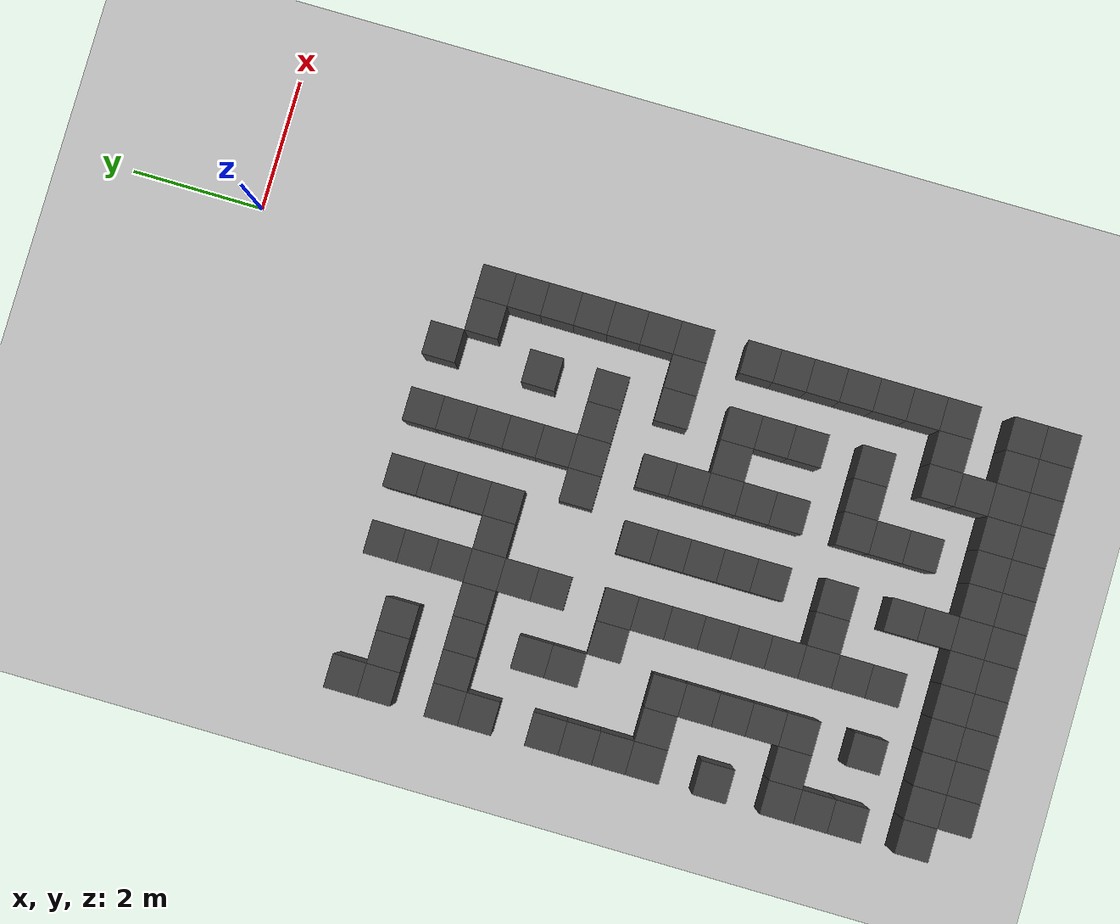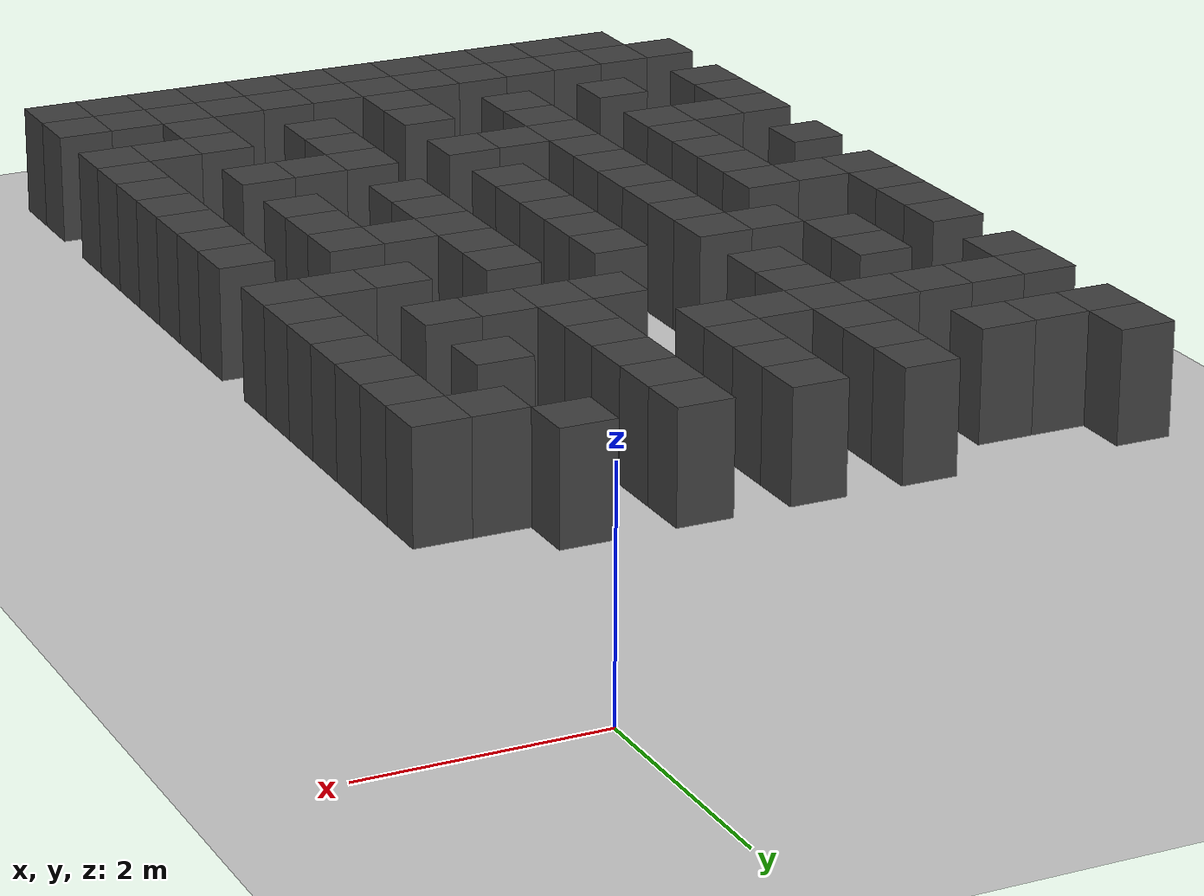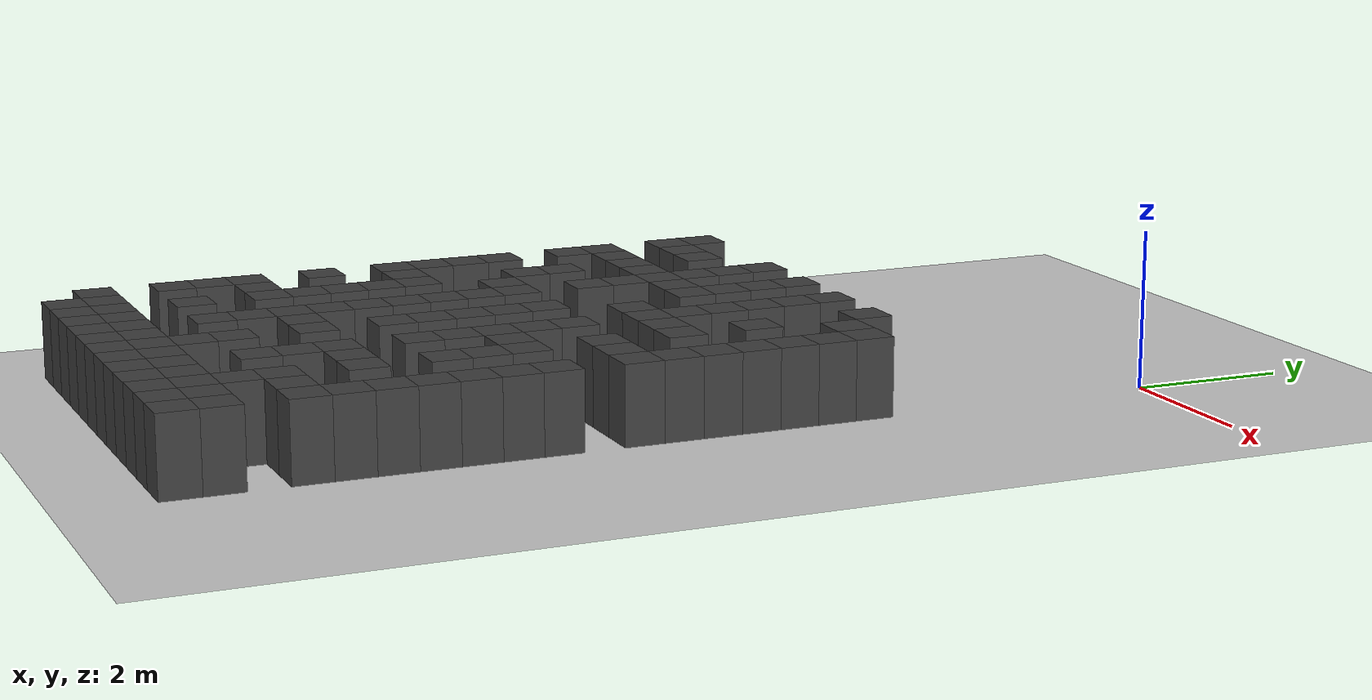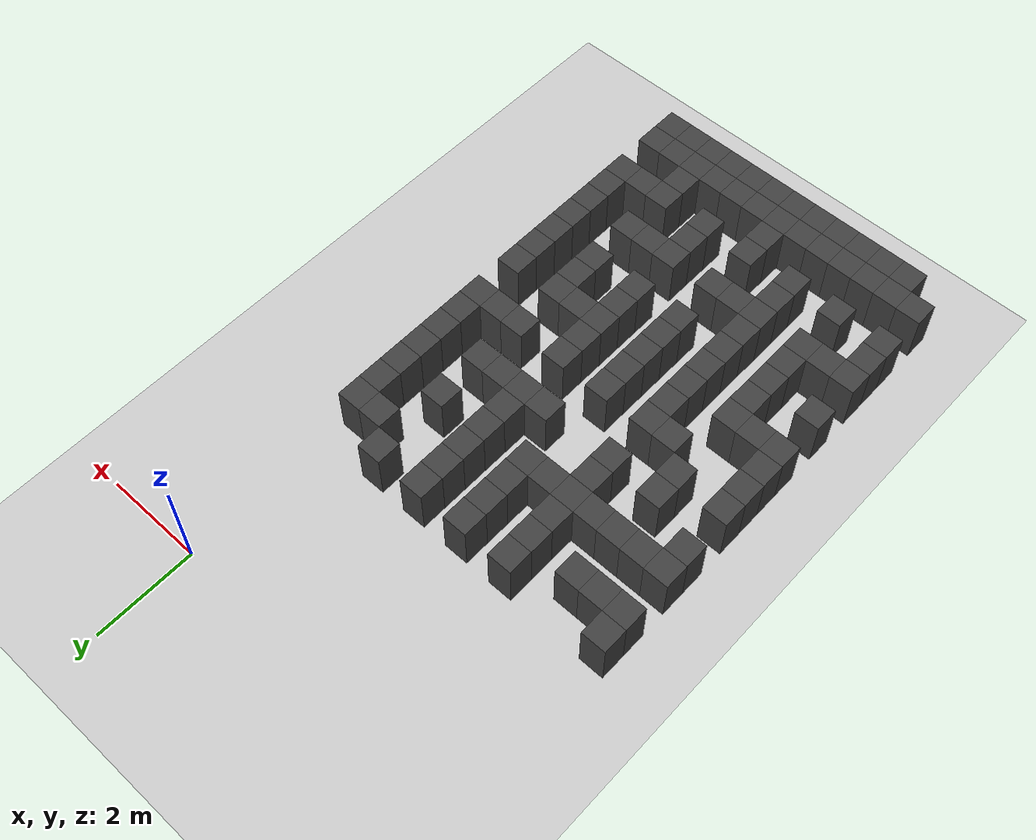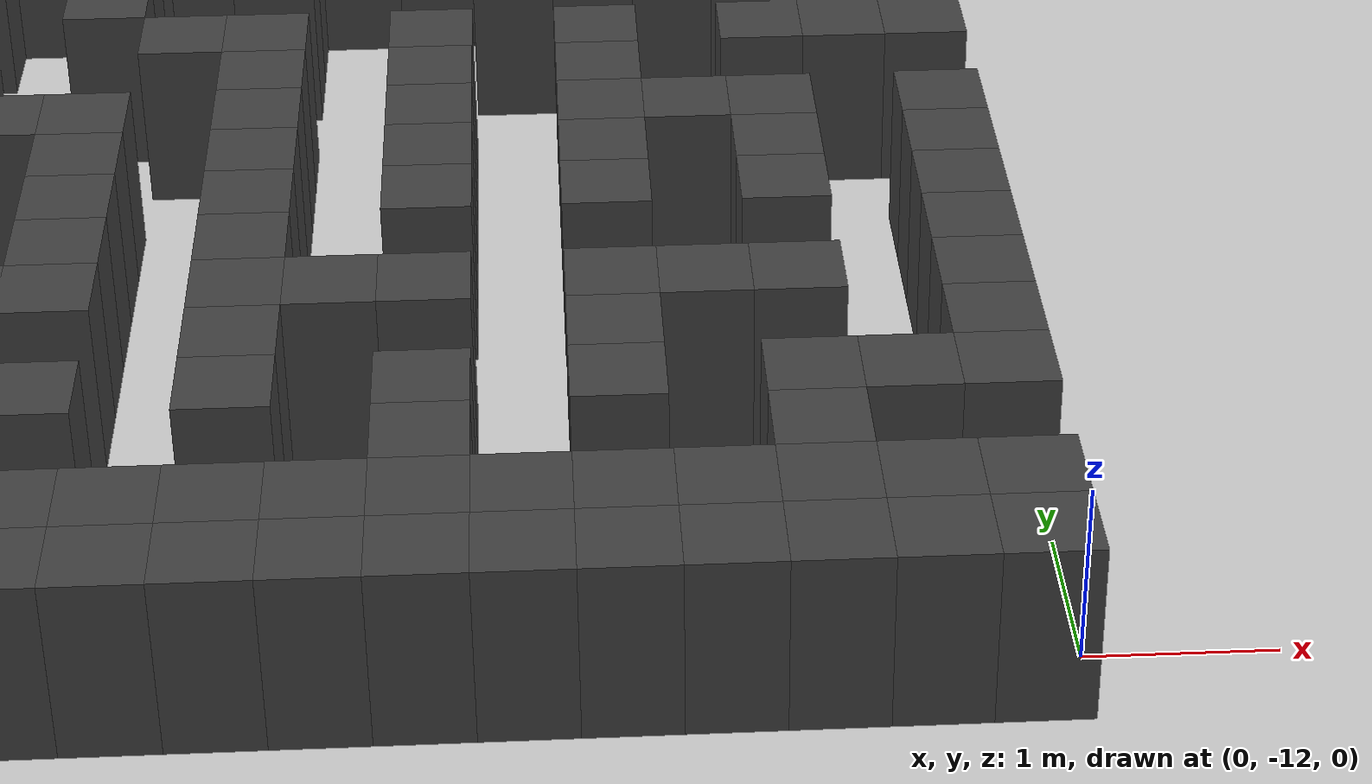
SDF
<sdf version="1.7">
 <world name="map_17503">
  <model name="ground_plane">
   <static>true</static>
   <link name="link">
    <collision name="collision">
     <geometry><plane><normal>0 0 1</normal><size>200 200</size></plane></geometry>
    </collision>
    <visual name="visual">
     <geometry><plane><normal>0 0 1</normal><size>200 200</size></plane></geometry>
     <material><ambient>0.8 0.8 0.8 1</ambient><diffuse>0.8 0.8 0.8 1</diffuse></material>
    </visual>
   </link>
  </model>
  <model name="maze_environment">
   <static>true</static>
   <link name="wall_777">
    <pose>-6.250 -3.250 0.500 0 0 0</pose>
    <collision name="col"><geometry><box><size>0.5 0.5 1.0</size></box></geometry></collision>
    <visual name="vis">
     <geometry><box><size>0.5 0.5 1.0</size></box></geometry>
     <material><ambient>0.15 0.15 0.15 1</ambient><diffuse>0.25 0.25 0.25 1</diffuse></material>
    </visual>
   </link>
   <link name="wall_778">
    <pose>-4.250 -3.250 0.500 0 0 0</pose>
    <collision name="col"><geometry><box><size>0.5 0.5 1.0</size></box></geometry></collision>
    <visual name="vis">
     <geometry><box><size>0.5 0.5 1.0</size></box></geometry>
     <material><ambient>0.15 0.15 0.15 1</ambient><diffuse>0.25 0.25 0.25 1</diffuse></material>
    </visual>
   </link>
   <link name="wall_779">
    <pose>-3.250 -3.250 0.500 0 0 0</pose>
    <collision name="col"><geometry><box><size>0.5 0.5 1.0</size></box></geometry></collision>
    <visual name="vis">
     <geometry><box><size>0.5 0.5 1.0</size></box></geometry>
     <material><ambient>0.15 0.15 0.15 1</ambient><diffuse>0.25 0.25 0.25 1</diffuse></material>
    </visual>
   </link>
   <link name="wall_780">
    <pose>-2.250 -3.250 0.500 0 0 0</pose>
    <collision name="col"><geometry><box><size>0.5 0.5 1.0</size></box></geometry></collision>
    <visual name="vis">
     <geometry><box><size>0.5 0.5 1.0</size></box></geometry>
     <material><ambient>0.15 0.15 0.15 1</ambient><diffuse>0.25 0.25 0.25 1</diffuse></material>
    </visual>
   </link>
   <link name="wall_781">
    <pose>-1.250 -3.250 0.500 0 0 0</pose>
    <collision name="col"><geometry><box><size>0.5 0.5 1.0</size></box></geometry></collision>
    <visual name="vis">
     <geometry><box><size>0.5 0.5 1.0</size></box></geometry>
     <material><ambient>0.15 0.15 0.15 1</ambient><diffuse>0.25 0.25 0.25 1</diffuse></material>
    </visual>
   </link>
   <link name="wall_798">
    <pose>-6.250 -3.750 0.500 0 0 0</pose>
    <collision name="col"><geometry><box><size>0.5 0.5 1.0</size></box></geometry></collision>
    <visual name="vis">
     <geometry><box><size>0.5 0.5 1.0</size></box></geometry>
     <material><ambient>0.15 0.15 0.15 1</ambient><diffuse>0.25 0.25 0.25 1</diffuse></material>
    </visual>
   </link>
   <link name="wall_799">
    <pose>-5.750 -3.750 0.500 0 0 0</pose>
    <collision name="col"><geometry><box><size>0.5 0.5 1.0</size></box></geometry></collision>
    <visual name="vis">
     <geometry><box><size>0.5 0.5 1.0</size></box></geometry>
     <material><ambient>0.15 0.15 0.15 1</ambient><diffuse>0.25 0.25 0.25 1</diffuse></material>
    </visual>
   </link>
   <link name="wall_800">
    <pose>-5.250 -3.750 0.500 0 0 0</pose>
    <collision name="col"><geometry><box><size>0.5 0.5 1.0</size></box></geometry></collision>
    <visual name="vis">
     <geometry><box><size>0.5 0.5 1.0</size></box></geometry>
     <material><ambient>0.15 0.15 0.15 1</ambient><diffuse>0.25 0.25 0.25 1</diffuse></material>
    </visual>
   </link>
   <link name="wall_801">
    <pose>-4.250 -3.750 0.500 0 0 0</pose>
    <collision name="col"><geometry><box><size>0.5 0.5 1.0</size></box></geometry></collision>
    <visual name="vis">
     <geometry><box><size>0.5 0.5 1.0</size></box></geometry>
     <material><ambient>0.15 0.15 0.15 1</ambient><diffuse>0.25 0.25 0.25 1</diffuse></material>
    </visual>
   </link>
   <link name="wall_802">
    <pose>-3.250 -3.750 0.500 0 0 0</pose>
    <collision name="col"><geometry><box><size>0.5 0.5 1.0</size></box></geometry></collision>
    <visual name="vis">
     <geometry><box><size>0.5 0.5 1.0</size></box></geometry>
     <material><ambient>0.15 0.15 0.15 1</ambient><diffuse>0.25 0.25 0.25 1</diffuse></material>
    </visual>
   </link>
   <link name="wall_803">
    <pose>-2.250 -3.750 0.500 0 0 0</pose>
    <collision name="col"><geometry><box><size>0.5 0.5 1.0</size></box></geometry></collision>
    <visual name="vis">
     <geometry><box><size>0.5 0.5 1.0</size></box></geometry>
     <material><ambient>0.15 0.15 0.15 1</ambient><diffuse>0.25 0.25 0.25 1</diffuse></material>
    </visual>
   </link>
   <link name="wall_804">
    <pose>-0.750 -3.750 0.500 0 0 0</pose>
    <collision name="col"><geometry><box><size>0.5 0.5 1.0</size></box></geometry></collision>
    <visual name="vis">
     <geometry><box><size>0.5 0.5 1.0</size></box></geometry>
     <material><ambient>0.15 0.15 0.15 1</ambient><diffuse>0.25 0.25 0.25 1</diffuse></material>
    </visual>
   </link>
   <link name="wall_805">
    <pose>-0.250 -3.750 0.500 0 0 0</pose>
    <collision name="col"><geometry><box><size>0.5 0.5 1.0</size></box></geometry></collision>
    <visual name="vis">
     <geometry><box><size>0.5 0.5 1.0</size></box></geometry>
     <material><ambient>0.15 0.15 0.15 1</ambient><diffuse>0.25 0.25 0.25 1</diffuse></material>
    </visual>
   </link>
   <link name="wall_829">
    <pose>-4.250 -4.250 0.500 0 0 0</pose>
    <collision name="col"><geometry><box><size>0.5 0.5 1.0</size></box></geometry></collision>
    <visual name="vis">
     <geometry><box><size>0.5 0.5 1.0</size></box></geometry>
     <material><ambient>0.15 0.15 0.15 1</ambient><diffuse>0.25 0.25 0.25 1</diffuse></material>
    </visual>
   </link>
   <link name="wall_830">
    <pose>-3.250 -4.250 0.500 0 0 0</pose>
    <collision name="col"><geometry><box><size>0.5 0.5 1.0</size></box></geometry></collision>
    <visual name="vis">
     <geometry><box><size>0.5 0.5 1.0</size></box></geometry>
     <material><ambient>0.15 0.15 0.15 1</ambient><diffuse>0.25 0.25 0.25 1</diffuse></material>
    </visual>
   </link>
   <link name="wall_831">
    <pose>-2.250 -4.250 0.500 0 0 0</pose>
    <collision name="col"><geometry><box><size>0.5 0.5 1.0</size></box></geometry></collision>
    <visual name="vis">
     <geometry><box><size>0.5 0.5 1.0</size></box></geometry>
     <material><ambient>0.15 0.15 0.15 1</ambient><diffuse>0.25 0.25 0.25 1</diffuse></material>
    </visual>
   </link>
   <link name="wall_832">
    <pose>-0.250 -4.250 0.500 0 0 0</pose>
    <collision name="col"><geometry><box><size>0.5 0.5 1.0</size></box></geometry></collision>
    <visual name="vis">
     <geometry><box><size>0.5 0.5 1.0</size></box></geometry>
     <material><ambient>0.15 0.15 0.15 1</ambient><diffuse>0.25 0.25 0.25 1</diffuse></material>
    </visual>
   </link>
   <link name="wall_850">
    <pose>-6.250 -4.750 0.500 0 0 0</pose>
    <collision name="col"><geometry><box><size>0.5 0.5 1.0</size></box></geometry></collision>
    <visual name="vis">
     <geometry><box><size>0.5 0.5 1.0</size></box></geometry>
     <material><ambient>0.15 0.15 0.15 1</ambient><diffuse>0.25 0.25 0.25 1</diffuse></material>
    </visual>
   </link>
   <link name="wall_851">
    <pose>-5.750 -4.750 0.500 0 0 0</pose>
    <collision name="col"><geometry><box><size>0.5 0.5 1.0</size></box></geometry></collision>
    <visual name="vis">
     <geometry><box><size>0.5 0.5 1.0</size></box></geometry>
     <material><ambient>0.15 0.15 0.15 1</ambient><diffuse>0.25 0.25 0.25 1</diffuse></material>
    </visual>
   </link>
   <link name="wall_852">
    <pose>-5.250 -4.750 0.500 0 0 0</pose>
    <collision name="col"><geometry><box><size>0.5 0.5 1.0</size></box></geometry></collision>
    <visual name="vis">
     <geometry><box><size>0.5 0.5 1.0</size></box></geometry>
     <material><ambient>0.15 0.15 0.15 1</ambient><diffuse>0.25 0.25 0.25 1</diffuse></material>
    </visual>
   </link>
   <link name="wall_853">
    <pose>-4.750 -4.750 0.500 0 0 0</pose>
    <collision name="col"><geometry><box><size>0.5 0.5 1.0</size></box></geometry></collision>
    <visual name="vis">
     <geometry><box><size>0.5 0.5 1.0</size></box></geometry>
     <material><ambient>0.15 0.15 0.15 1</ambient><diffuse>0.25 0.25 0.25 1</diffuse></material>
    </visual>
   </link>
   <link name="wall_854">
    <pose>-4.250 -4.750 0.500 0 0 0</pose>
    <collision name="col"><geometry><box><size>0.5 0.5 1.0</size></box></geometry></collision>
    <visual name="vis">
     <geometry><box><size>0.5 0.5 1.0</size></box></geometry>
     <material><ambient>0.15 0.15 0.15 1</ambient><diffuse>0.25 0.25 0.25 1</diffuse></material>
    </visual>
   </link>
   <link name="wall_855">
    <pose>-3.750 -4.750 0.500 0 0 0</pose>
    <collision name="col"><geometry><box><size>0.5 0.5 1.0</size></box></geometry></collision>
    <visual name="vis">
     <geometry><box><size>0.5 0.5 1.0</size></box></geometry>
     <material><ambient>0.15 0.15 0.15 1</ambient><diffuse>0.25 0.25 0.25 1</diffuse></material>
    </visual>
   </link>
   <link name="wall_856">
    <pose>-3.250 -4.750 0.500 0 0 0</pose>
    <collision name="col"><geometry><box><size>0.5 0.5 1.0</size></box></geometry></collision>
    <visual name="vis">
     <geometry><box><size>0.5 0.5 1.0</size></box></geometry>
     <material><ambient>0.15 0.15 0.15 1</ambient><diffuse>0.25 0.25 0.25 1</diffuse></material>
    </visual>
   </link>
   <link name="wall_857">
    <pose>-2.250 -4.750 0.500 0 0 0</pose>
    <collision name="col"><geometry><box><size>0.5 0.5 1.0</size></box></geometry></collision>
    <visual name="vis">
     <geometry><box><size>0.5 0.5 1.0</size></box></geometry>
     <material><ambient>0.15 0.15 0.15 1</ambient><diffuse>0.25 0.25 0.25 1</diffuse></material>
    </visual>
   </link>
   <link name="wall_858">
    <pose>-1.250 -4.750 0.500 0 0 0</pose>
    <collision name="col"><geometry><box><size>0.5 0.5 1.0</size></box></geometry></collision>
    <visual name="vis">
     <geometry><box><size>0.5 0.5 1.0</size></box></geometry>
     <material><ambient>0.15 0.15 0.15 1</ambient><diffuse>0.25 0.25 0.25 1</diffuse></material>
    </visual>
   </link>
   <link name="wall_859">
    <pose>-0.250 -4.750 0.500 0 0 0</pose>
    <collision name="col"><geometry><box><size>0.5 0.5 1.0</size></box></geometry></collision>
    <visual name="vis">
     <geometry><box><size>0.5 0.5 1.0</size></box></geometry>
     <material><ambient>0.15 0.15 0.15 1</ambient><diffuse>0.25 0.25 0.25 1</diffuse></material>
    </visual>
   </link>
   <link name="wall_881">
    <pose>-6.250 -5.250 0.500 0 0 0</pose>
    <collision name="col"><geometry><box><size>0.5 0.5 1.0</size></box></geometry></collision>
    <visual name="vis">
     <geometry><box><size>0.5 0.5 1.0</size></box></geometry>
     <material><ambient>0.15 0.15 0.15 1</ambient><diffuse>0.25 0.25 0.25 1</diffuse></material>
    </visual>
   </link>
   <link name="wall_882">
    <pose>-4.250 -5.250 0.500 0 0 0</pose>
    <collision name="col"><geometry><box><size>0.5 0.5 1.0</size></box></geometry></collision>
    <visual name="vis">
     <geometry><box><size>0.5 0.5 1.0</size></box></geometry>
     <material><ambient>0.15 0.15 0.15 1</ambient><diffuse>0.25 0.25 0.25 1</diffuse></material>
    </visual>
   </link>
   <link name="wall_883">
    <pose>-2.250 -5.250 0.500 0 0 0</pose>
    <collision name="col"><geometry><box><size>0.5 0.5 1.0</size></box></geometry></collision>
    <visual name="vis">
     <geometry><box><size>0.5 0.5 1.0</size></box></geometry>
     <material><ambient>0.15 0.15 0.15 1</ambient><diffuse>0.25 0.25 0.25 1</diffuse></material>
    </visual>
   </link>
   <link name="wall_884">
    <pose>-0.250 -5.250 0.500 0 0 0</pose>
    <collision name="col"><geometry><box><size>0.5 0.5 1.0</size></box></geometry></collision>
    <visual name="vis">
     <geometry><box><size>0.5 0.5 1.0</size></box></geometry>
     <material><ambient>0.15 0.15 0.15 1</ambient><diffuse>0.25 0.25 0.25 1</diffuse></material>
    </visual>
   </link>
   <link name="wall_900">
    <pose>-5.250 -5.750 0.500 0 0 0</pose>
    <collision name="col"><geometry><box><size>0.5 0.5 1.0</size></box></geometry></collision>
    <visual name="vis">
     <geometry><box><size>0.5 0.5 1.0</size></box></geometry>
     <material><ambient>0.15 0.15 0.15 1</ambient><diffuse>0.25 0.25 0.25 1</diffuse></material>
    </visual>
   </link>
   <link name="wall_901">
    <pose>-4.250 -5.750 0.500 0 0 0</pose>
    <collision name="col"><geometry><box><size>0.5 0.5 1.0</size></box></geometry></collision>
    <visual name="vis">
     <geometry><box><size>0.5 0.5 1.0</size></box></geometry>
     <material><ambient>0.15 0.15 0.15 1</ambient><diffuse>0.25 0.25 0.25 1</diffuse></material>
    </visual>
   </link>
   <link name="wall_902">
    <pose>-2.750 -5.750 0.500 0 0 0</pose>
    <collision name="col"><geometry><box><size>0.5 0.5 1.0</size></box></geometry></collision>
    <visual name="vis">
     <geometry><box><size>0.5 0.5 1.0</size></box></geometry>
     <material><ambient>0.15 0.15 0.15 1</ambient><diffuse>0.25 0.25 0.25 1</diffuse></material>
    </visual>
   </link>
   <link name="wall_903">
    <pose>-2.250 -5.750 0.500 0 0 0</pose>
    <collision name="col"><geometry><box><size>0.5 0.5 1.0</size></box></geometry></collision>
    <visual name="vis">
     <geometry><box><size>0.5 0.5 1.0</size></box></geometry>
     <material><ambient>0.15 0.15 0.15 1</ambient><diffuse>0.25 0.25 0.25 1</diffuse></material>
    </visual>
   </link>
   <link name="wall_904">
    <pose>-1.750 -5.750 0.500 0 0 0</pose>
    <collision name="col"><geometry><box><size>0.5 0.5 1.0</size></box></geometry></collision>
    <visual name="vis">
     <geometry><box><size>0.5 0.5 1.0</size></box></geometry>
     <material><ambient>0.15 0.15 0.15 1</ambient><diffuse>0.25 0.25 0.25 1</diffuse></material>
    </visual>
   </link>
   <link name="wall_905">
    <pose>-1.250 -5.750 0.500 0 0 0</pose>
    <collision name="col"><geometry><box><size>0.5 0.5 1.0</size></box></geometry></collision>
    <visual name="vis">
     <geometry><box><size>0.5 0.5 1.0</size></box></geometry>
     <material><ambient>0.15 0.15 0.15 1</ambient><diffuse>0.25 0.25 0.25 1</diffuse></material>
    </visual>
   </link>
   <link name="wall_906">
    <pose>-0.250 -5.750 0.500 0 0 0</pose>
    <collision name="col"><geometry><box><size>0.5 0.5 1.0</size></box></geometry></collision>
    <visual name="vis">
     <geometry><box><size>0.5 0.5 1.0</size></box></geometry>
     <material><ambient>0.15 0.15 0.15 1</ambient><diffuse>0.25 0.25 0.25 1</diffuse></material>
    </visual>
   </link>
   <link name="wall_927">
    <pose>-6.250 -6.250 0.500 0 0 0</pose>
    <collision name="col"><geometry><box><size>0.5 0.5 1.0</size></box></geometry></collision>
    <visual name="vis">
     <geometry><box><size>0.5 0.5 1.0</size></box></geometry>
     <material><ambient>0.15 0.15 0.15 1</ambient><diffuse>0.25 0.25 0.25 1</diffuse></material>
    </visual>
   </link>
   <link name="wall_928">
    <pose>-5.250 -6.250 0.500 0 0 0</pose>
    <collision name="col"><geometry><box><size>0.5 0.5 1.0</size></box></geometry></collision>
    <visual name="vis">
     <geometry><box><size>0.5 0.5 1.0</size></box></geometry>
     <material><ambient>0.15 0.15 0.15 1</ambient><diffuse>0.25 0.25 0.25 1</diffuse></material>
    </visual>
   </link>
   <link name="wall_929">
    <pose>-0.250 -6.250 0.500 0 0 0</pose>
    <collision name="col"><geometry><box><size>0.5 0.5 1.0</size></box></geometry></collision>
    <visual name="vis">
     <geometry><box><size>0.5 0.5 1.0</size></box></geometry>
     <material><ambient>0.15 0.15 0.15 1</ambient><diffuse>0.25 0.25 0.25 1</diffuse></material>
    </visual>
   </link>
   <link name="wall_944">
    <pose>-6.250 -6.750 0.500 0 0 0</pose>
    <collision name="col"><geometry><box><size>0.5 0.5 1.0</size></box></geometry></collision>
    <visual name="vis">
     <geometry><box><size>0.5 0.5 1.0</size></box></geometry>
     <material><ambient>0.15 0.15 0.15 1</ambient><diffuse>0.25 0.25 0.25 1</diffuse></material>
    </visual>
   </link>
   <link name="wall_945">
    <pose>-4.750 -6.750 0.500 0 0 0</pose>
    <collision name="col"><geometry><box><size>0.5 0.5 1.0</size></box></geometry></collision>
    <visual name="vis">
     <geometry><box><size>0.5 0.5 1.0</size></box></geometry>
     <material><ambient>0.15 0.15 0.15 1</ambient><diffuse>0.25 0.25 0.25 1</diffuse></material>
    </visual>
   </link>
   <link name="wall_946">
    <pose>-4.250 -6.750 0.500 0 0 0</pose>
    <collision name="col"><geometry><box><size>0.5 0.5 1.0</size></box></geometry></collision>
    <visual name="vis">
     <geometry><box><size>0.5 0.5 1.0</size></box></geometry>
     <material><ambient>0.15 0.15 0.15 1</ambient><diffuse>0.25 0.25 0.25 1</diffuse></material>
    </visual>
   </link>
   <link name="wall_947">
    <pose>-3.250 -6.750 0.500 0 0 0</pose>
    <collision name="col"><geometry><box><size>0.5 0.5 1.0</size></box></geometry></collision>
    <visual name="vis">
     <geometry><box><size>0.5 0.5 1.0</size></box></geometry>
     <material><ambient>0.15 0.15 0.15 1</ambient><diffuse>0.25 0.25 0.25 1</diffuse></material>
    </visual>
   </link>
   <link name="wall_948">
    <pose>-2.250 -6.750 0.500 0 0 0</pose>
    <collision name="col"><geometry><box><size>0.5 0.5 1.0</size></box></geometry></collision>
    <visual name="vis">
     <geometry><box><size>0.5 0.5 1.0</size></box></geometry>
     <material><ambient>0.15 0.15 0.15 1</ambient><diffuse>0.25 0.25 0.25 1</diffuse></material>
    </visual>
   </link>
   <link name="wall_949">
    <pose>-1.250 -6.750 0.500 0 0 0</pose>
    <collision name="col"><geometry><box><size>0.5 0.5 1.0</size></box></geometry></collision>
    <visual name="vis">
     <geometry><box><size>0.5 0.5 1.0</size></box></geometry>
     <material><ambient>0.15 0.15 0.15 1</ambient><diffuse>0.25 0.25 0.25 1</diffuse></material>
    </visual>
   </link>
   <link name="wall_950">
    <pose>-0.750 -6.750 0.500 0 0 0</pose>
    <collision name="col"><geometry><box><size>0.5 0.5 1.0</size></box></geometry></collision>
    <visual name="vis">
     <geometry><box><size>0.5 0.5 1.0</size></box></geometry>
     <material><ambient>0.15 0.15 0.15 1</ambient><diffuse>0.25 0.25 0.25 1</diffuse></material>
    </visual>
   </link>
   <link name="wall_951">
    <pose>-0.250 -6.750 0.500 0 0 0</pose>
    <collision name="col"><geometry><box><size>0.5 0.5 1.0</size></box></geometry></collision>
    <visual name="vis">
     <geometry><box><size>0.5 0.5 1.0</size></box></geometry>
     <material><ambient>0.15 0.15 0.15 1</ambient><diffuse>0.25 0.25 0.25 1</diffuse></material>
    </visual>
   </link>
   <link name="wall_976">
    <pose>-6.250 -7.250 0.500 0 0 0</pose>
    <collision name="col"><geometry><box><size>0.5 0.5 1.0</size></box></geometry></collision>
    <visual name="vis">
     <geometry><box><size>0.5 0.5 1.0</size></box></geometry>
     <material><ambient>0.15 0.15 0.15 1</ambient><diffuse>0.25 0.25 0.25 1</diffuse></material>
    </visual>
   </link>
   <link name="wall_977">
    <pose>-4.250 -7.250 0.500 0 0 0</pose>
    <collision name="col"><geometry><box><size>0.5 0.5 1.0</size></box></geometry></collision>
    <visual name="vis">
     <geometry><box><size>0.5 0.5 1.0</size></box></geometry>
     <material><ambient>0.15 0.15 0.15 1</ambient><diffuse>0.25 0.25 0.25 1</diffuse></material>
    </visual>
   </link>
   <link name="wall_978">
    <pose>-3.250 -7.250 0.500 0 0 0</pose>
    <collision name="col"><geometry><box><size>0.5 0.5 1.0</size></box></geometry></collision>
    <visual name="vis">
     <geometry><box><size>0.5 0.5 1.0</size></box></geometry>
     <material><ambient>0.15 0.15 0.15 1</ambient><diffuse>0.25 0.25 0.25 1</diffuse></material>
    </visual>
   </link>
   <link name="wall_979">
    <pose>-2.250 -7.250 0.500 0 0 0</pose>
    <collision name="col"><geometry><box><size>0.5 0.5 1.0</size></box></geometry></collision>
    <visual name="vis">
     <geometry><box><size>0.5 0.5 1.0</size></box></geometry>
     <material><ambient>0.15 0.15 0.15 1</ambient><diffuse>0.25 0.25 0.25 1</diffuse></material>
    </visual>
   </link>
   <link name="wall_995">
    <pose>-6.250 -7.750 0.500 0 0 0</pose>
    <collision name="col"><geometry><box><size>0.5 0.5 1.0</size></box></geometry></collision>
    <visual name="vis">
     <geometry><box><size>0.5 0.5 1.0</size></box></geometry>
     <material><ambient>0.15 0.15 0.15 1</ambient><diffuse>0.25 0.25 0.25 1</diffuse></material>
    </visual>
   </link>
   <link name="wall_996">
    <pose>-5.750 -7.750 0.500 0 0 0</pose>
    <collision name="col"><geometry><box><size>0.5 0.5 1.0</size></box></geometry></collision>
    <visual name="vis">
     <geometry><box><size>0.5 0.5 1.0</size></box></geometry>
     <material><ambient>0.15 0.15 0.15 1</ambient><diffuse>0.25 0.25 0.25 1</diffuse></material>
    </visual>
   </link>
   <link name="wall_997">
    <pose>-5.250 -7.750 0.500 0 0 0</pose>
    <collision name="col"><geometry><box><size>0.5 0.5 1.0</size></box></geometry></collision>
    <visual name="vis">
     <geometry><box><size>0.5 0.5 1.0</size></box></geometry>
     <material><ambient>0.15 0.15 0.15 1</ambient><diffuse>0.25 0.25 0.25 1</diffuse></material>
    </visual>
   </link>
   <link name="wall_998">
    <pose>-4.250 -7.750 0.500 0 0 0</pose>
    <collision name="col"><geometry><box><size>0.5 0.5 1.0</size></box></geometry></collision>
    <visual name="vis">
     <geometry><box><size>0.5 0.5 1.0</size></box></geometry>
     <material><ambient>0.15 0.15 0.15 1</ambient><diffuse>0.25 0.25 0.25 1</diffuse></material>
    </visual>
   </link>
   <link name="wall_999">
    <pose>-3.250 -7.750 0.500 0 0 0</pose>
    <collision name="col"><geometry><box><size>0.5 0.5 1.0</size></box></geometry></collision>
    <visual name="vis">
     <geometry><box><size>0.5 0.5 1.0</size></box></geometry>
     <material><ambient>0.15 0.15 0.15 1</ambient><diffuse>0.25 0.25 0.25 1</diffuse></material>
    </visual>
   </link>
   <link name="wall_1000">
    <pose>-2.250 -7.750 0.500 0 0 0</pose>
    <collision name="col"><geometry><box><size>0.5 0.5 1.0</size></box></geometry></collision>
    <visual name="vis">
     <geometry><box><size>0.5 0.5 1.0</size></box></geometry>
     <material><ambient>0.15 0.15 0.15 1</ambient><diffuse>0.25 0.25 0.25 1</diffuse></material>
    </visual>
   </link>
   <link name="wall_1001">
    <pose>-1.750 -7.750 0.500 0 0 0</pose>
    <collision name="col"><geometry><box><size>0.5 0.5 1.0</size></box></geometry></collision>
    <visual name="vis">
     <geometry><box><size>0.5 0.5 1.0</size></box></geometry>
     <material><ambient>0.15 0.15 0.15 1</ambient><diffuse>0.25 0.25 0.25 1</diffuse></material>
    </visual>
   </link>
   <link name="wall_1002">
    <pose>-1.250 -7.750 0.500 0 0 0</pose>
    <collision name="col"><geometry><box><size>0.5 0.5 1.0</size></box></geometry></collision>
    <visual name="vis">
     <geometry><box><size>0.5 0.5 1.0</size></box></geometry>
     <material><ambient>0.15 0.15 0.15 1</ambient><diffuse>0.25 0.25 0.25 1</diffuse></material>
    </visual>
   </link>
   <link name="wall_1003">
    <pose>-0.250 -7.750 0.500 0 0 0</pose>
    <collision name="col"><geometry><box><size>0.5 0.5 1.0</size></box></geometry></collision>
    <visual name="vis">
     <geometry><box><size>0.5 0.5 1.0</size></box></geometry>
     <material><ambient>0.15 0.15 0.15 1</ambient><diffuse>0.25 0.25 0.25 1</diffuse></material>
    </visual>
   </link>
   <link name="wall_1022">
    <pose>-5.250 -8.250 0.500 0 0 0</pose>
    <collision name="col"><geometry><box><size>0.5 0.5 1.0</size></box></geometry></collision>
    <visual name="vis">
     <geometry><box><size>0.5 0.5 1.0</size></box></geometry>
     <material><ambient>0.15 0.15 0.15 1</ambient><diffuse>0.25 0.25 0.25 1</diffuse></material>
    </visual>
   </link>
   <link name="wall_1023">
    <pose>-4.250 -8.250 0.500 0 0 0</pose>
    <collision name="col"><geometry><box><size>0.5 0.5 1.0</size></box></geometry></collision>
    <visual name="vis">
     <geometry><box><size>0.5 0.5 1.0</size></box></geometry>
     <material><ambient>0.15 0.15 0.15 1</ambient><diffuse>0.25 0.25 0.25 1</diffuse></material>
    </visual>
   </link>
   <link name="wall_1024">
    <pose>-3.250 -8.250 0.500 0 0 0</pose>
    <collision name="col"><geometry><box><size>0.5 0.5 1.0</size></box></geometry></collision>
    <visual name="vis">
     <geometry><box><size>0.5 0.5 1.0</size></box></geometry>
     <material><ambient>0.15 0.15 0.15 1</ambient><diffuse>0.25 0.25 0.25 1</diffuse></material>
    </visual>
   </link>
   <link name="wall_1025">
    <pose>-2.250 -8.250 0.500 0 0 0</pose>
    <collision name="col"><geometry><box><size>0.5 0.5 1.0</size></box></geometry></collision>
    <visual name="vis">
     <geometry><box><size>0.5 0.5 1.0</size></box></geometry>
     <material><ambient>0.15 0.15 0.15 1</ambient><diffuse>0.25 0.25 0.25 1</diffuse></material>
    </visual>
   </link>
   <link name="wall_1026">
    <pose>-1.250 -8.250 0.500 0 0 0</pose>
    <collision name="col"><geometry><box><size>0.5 0.5 1.0</size></box></geometry></collision>
    <visual name="vis">
     <geometry><box><size>0.5 0.5 1.0</size></box></geometry>
     <material><ambient>0.15 0.15 0.15 1</ambient><diffuse>0.25 0.25 0.25 1</diffuse></material>
    </visual>
   </link>
   <link name="wall_1027">
    <pose>-0.250 -8.250 0.500 0 0 0</pose>
    <collision name="col"><geometry><box><size>0.5 0.5 1.0</size></box></geometry></collision>
    <visual name="vis">
     <geometry><box><size>0.5 0.5 1.0</size></box></geometry>
     <material><ambient>0.15 0.15 0.15 1</ambient><diffuse>0.25 0.25 0.25 1</diffuse></material>
    </visual>
   </link>
   <link name="wall_1045">
    <pose>-6.250 -8.750 0.500 0 0 0</pose>
    <collision name="col"><geometry><box><size>0.5 0.5 1.0</size></box></geometry></collision>
    <visual name="vis">
     <geometry><box><size>0.5 0.5 1.0</size></box></geometry>
     <material><ambient>0.15 0.15 0.15 1</ambient><diffuse>0.25 0.25 0.25 1</diffuse></material>
    </visual>
   </link>
   <link name="wall_1046">
    <pose>-5.250 -8.750 0.500 0 0 0</pose>
    <collision name="col"><geometry><box><size>0.5 0.5 1.0</size></box></geometry></collision>
    <visual name="vis">
     <geometry><box><size>0.5 0.5 1.0</size></box></geometry>
     <material><ambient>0.15 0.15 0.15 1</ambient><diffuse>0.25 0.25 0.25 1</diffuse></material>
    </visual>
   </link>
   <link name="wall_1047">
    <pose>-4.250 -8.750 0.500 0 0 0</pose>
    <collision name="col"><geometry><box><size>0.5 0.5 1.0</size></box></geometry></collision>
    <visual name="vis">
     <geometry><box><size>0.5 0.5 1.0</size></box></geometry>
     <material><ambient>0.15 0.15 0.15 1</ambient><diffuse>0.25 0.25 0.25 1</diffuse></material>
    </visual>
   </link>
   <link name="wall_1048">
    <pose>-3.250 -8.750 0.500 0 0 0</pose>
    <collision name="col"><geometry><box><size>0.5 0.5 1.0</size></box></geometry></collision>
    <visual name="vis">
     <geometry><box><size>0.5 0.5 1.0</size></box></geometry>
     <material><ambient>0.15 0.15 0.15 1</ambient><diffuse>0.25 0.25 0.25 1</diffuse></material>
    </visual>
   </link>
   <link name="wall_1049">
    <pose>-2.250 -8.750 0.500 0 0 0</pose>
    <collision name="col"><geometry><box><size>0.5 0.5 1.0</size></box></geometry></collision>
    <visual name="vis">
     <geometry><box><size>0.5 0.5 1.0</size></box></geometry>
     <material><ambient>0.15 0.15 0.15 1</ambient><diffuse>0.25 0.25 0.25 1</diffuse></material>
    </visual>
   </link>
   <link name="wall_1050">
    <pose>-1.250 -8.750 0.500 0 0 0</pose>
    <collision name="col"><geometry><box><size>0.5 0.5 1.0</size></box></geometry></collision>
    <visual name="vis">
     <geometry><box><size>0.5 0.5 1.0</size></box></geometry>
     <material><ambient>0.15 0.15 0.15 1</ambient><diffuse>0.25 0.25 0.25 1</diffuse></material>
    </visual>
   </link>
   <link name="wall_1051">
    <pose>-0.250 -8.750 0.500 0 0 0</pose>
    <collision name="col"><geometry><box><size>0.5 0.5 1.0</size></box></geometry></collision>
    <visual name="vis">
     <geometry><box><size>0.5 0.5 1.0</size></box></geometry>
     <material><ambient>0.15 0.15 0.15 1</ambient><diffuse>0.25 0.25 0.25 1</diffuse></material>
    </visual>
   </link>
   <link name="wall_1073">
    <pose>-5.250 -9.250 0.500 0 0 0</pose>
    <collision name="col"><geometry><box><size>0.5 0.5 1.0</size></box></geometry></collision>
    <visual name="vis">
     <geometry><box><size>0.5 0.5 1.0</size></box></geometry>
     <material><ambient>0.15 0.15 0.15 1</ambient><diffuse>0.25 0.25 0.25 1</diffuse></material>
    </visual>
   </link>
   <link name="wall_1074">
    <pose>-4.250 -9.250 0.500 0 0 0</pose>
    <collision name="col"><geometry><box><size>0.5 0.5 1.0</size></box></geometry></collision>
    <visual name="vis">
     <geometry><box><size>0.5 0.5 1.0</size></box></geometry>
     <material><ambient>0.15 0.15 0.15 1</ambient><diffuse>0.25 0.25 0.25 1</diffuse></material>
    </visual>
   </link>
   <link name="wall_1075">
    <pose>-0.250 -9.250 0.500 0 0 0</pose>
    <collision name="col"><geometry><box><size>0.5 0.5 1.0</size></box></geometry></collision>
    <visual name="vis">
     <geometry><box><size>0.5 0.5 1.0</size></box></geometry>
     <material><ambient>0.15 0.15 0.15 1</ambient><diffuse>0.25 0.25 0.25 1</diffuse></material>
    </visual>
   </link>
   <link name="wall_1091">
    <pose>-6.250 -9.750 0.500 0 0 0</pose>
    <collision name="col"><geometry><box><size>0.5 0.5 1.0</size></box></geometry></collision>
    <visual name="vis">
     <geometry><box><size>0.5 0.5 1.0</size></box></geometry>
     <material><ambient>0.15 0.15 0.15 1</ambient><diffuse>0.25 0.25 0.25 1</diffuse></material>
    </visual>
   </link>
   <link name="wall_1092">
    <pose>-5.750 -9.750 0.500 0 0 0</pose>
    <collision name="col"><geometry><box><size>0.5 0.5 1.0</size></box></geometry></collision>
    <visual name="vis">
     <geometry><box><size>0.5 0.5 1.0</size></box></geometry>
     <material><ambient>0.15 0.15 0.15 1</ambient><diffuse>0.25 0.25 0.25 1</diffuse></material>
    </visual>
   </link>
   <link name="wall_1093">
    <pose>-5.250 -9.750 0.500 0 0 0</pose>
    <collision name="col"><geometry><box><size>0.5 0.5 1.0</size></box></geometry></collision>
    <visual name="vis">
     <geometry><box><size>0.5 0.5 1.0</size></box></geometry>
     <material><ambient>0.15 0.15 0.15 1</ambient><diffuse>0.25 0.25 0.25 1</diffuse></material>
    </visual>
   </link>
   <link name="wall_1094">
    <pose>-4.250 -9.750 0.500 0 0 0</pose>
    <collision name="col"><geometry><box><size>0.5 0.5 1.0</size></box></geometry></collision>
    <visual name="vis">
     <geometry><box><size>0.5 0.5 1.0</size></box></geometry>
     <material><ambient>0.15 0.15 0.15 1</ambient><diffuse>0.25 0.25 0.25 1</diffuse></material>
    </visual>
   </link>
   <link name="wall_1095">
    <pose>-3.750 -9.750 0.500 0 0 0</pose>
    <collision name="col"><geometry><box><size>0.5 0.5 1.0</size></box></geometry></collision>
    <visual name="vis">
     <geometry><box><size>0.5 0.5 1.0</size></box></geometry>
     <material><ambient>0.15 0.15 0.15 1</ambient><diffuse>0.25 0.25 0.25 1</diffuse></material>
    </visual>
   </link>
   <link name="wall_1096">
    <pose>-3.250 -9.750 0.500 0 0 0</pose>
    <collision name="col"><geometry><box><size>0.5 0.5 1.0</size></box></geometry></collision>
    <visual name="vis">
     <geometry><box><size>0.5 0.5 1.0</size></box></geometry>
     <material><ambient>0.15 0.15 0.15 1</ambient><diffuse>0.25 0.25 0.25 1</diffuse></material>
    </visual>
   </link>
   <link name="wall_1097">
    <pose>-2.250 -9.750 0.500 0 0 0</pose>
    <collision name="col"><geometry><box><size>0.5 0.5 1.0</size></box></geometry></collision>
    <visual name="vis">
     <geometry><box><size>0.5 0.5 1.0</size></box></geometry>
     <material><ambient>0.15 0.15 0.15 1</ambient><diffuse>0.25 0.25 0.25 1</diffuse></material>
    </visual>
   </link>
   <link name="wall_1098">
    <pose>-1.750 -9.750 0.500 0 0 0</pose>
    <collision name="col"><geometry><box><size>0.5 0.5 1.0</size></box></geometry></collision>
    <visual name="vis">
     <geometry><box><size>0.5 0.5 1.0</size></box></geometry>
     <material><ambient>0.15 0.15 0.15 1</ambient><diffuse>0.25 0.25 0.25 1</diffuse></material>
    </visual>
   </link>
   <link name="wall_1099">
    <pose>-1.250 -9.750 0.500 0 0 0</pose>
    <collision name="col"><geometry><box><size>0.5 0.5 1.0</size></box></geometry></collision>
    <visual name="vis">
     <geometry><box><size>0.5 0.5 1.0</size></box></geometry>
     <material><ambient>0.15 0.15 0.15 1</ambient><diffuse>0.25 0.25 0.25 1</diffuse></material>
    </visual>
   </link>
   <link name="wall_1100">
    <pose>-0.250 -9.750 0.500 0 0 0</pose>
    <collision name="col"><geometry><box><size>0.5 0.5 1.0</size></box></geometry></collision>
    <visual name="vis">
     <geometry><box><size>0.5 0.5 1.0</size></box></geometry>
     <material><ambient>0.15 0.15 0.15 1</ambient><diffuse>0.25 0.25 0.25 1</diffuse></material>
    </visual>
   </link>
   <link name="wall_1121">
    <pose>-6.250 -10.250 0.500 0 0 0</pose>
    <collision name="col"><geometry><box><size>0.5 0.5 1.0</size></box></geometry></collision>
    <visual name="vis">
     <geometry><box><size>0.5 0.5 1.0</size></box></geometry>
     <material><ambient>0.15 0.15 0.15 1</ambient><diffuse>0.25 0.25 0.25 1</diffuse></material>
    </visual>
   </link>
   <link name="wall_1122">
    <pose>-4.250 -10.250 0.500 0 0 0</pose>
    <collision name="col"><geometry><box><size>0.5 0.5 1.0</size></box></geometry></collision>
    <visual name="vis">
     <geometry><box><size>0.5 0.5 1.0</size></box></geometry>
     <material><ambient>0.15 0.15 0.15 1</ambient><diffuse>0.25 0.25 0.25 1</diffuse></material>
    </visual>
   </link>
   <link name="wall_1123">
    <pose>-2.250 -10.250 0.500 0 0 0</pose>
    <collision name="col"><geometry><box><size>0.5 0.5 1.0</size></box></geometry></collision>
    <visual name="vis">
     <geometry><box><size>0.5 0.5 1.0</size></box></geometry>
     <material><ambient>0.15 0.15 0.15 1</ambient><diffuse>0.25 0.25 0.25 1</diffuse></material>
    </visual>
   </link>
   <link name="wall_1124">
    <pose>-0.250 -10.250 0.500 0 0 0</pose>
    <collision name="col"><geometry><box><size>0.5 0.5 1.0</size></box></geometry></collision>
    <visual name="vis">
     <geometry><box><size>0.5 0.5 1.0</size></box></geometry>
     <material><ambient>0.15 0.15 0.15 1</ambient><diffuse>0.25 0.25 0.25 1</diffuse></material>
    </visual>
   </link>
   <link name="wall_1138">
    <pose>-6.250 -10.750 0.500 0 0 0</pose>
    <collision name="col"><geometry><box><size>0.5 0.5 1.0</size></box></geometry></collision>
    <visual name="vis">
     <geometry><box><size>0.5 0.5 1.0</size></box></geometry>
     <material><ambient>0.15 0.15 0.15 1</ambient><diffuse>0.25 0.25 0.25 1</diffuse></material>
    </visual>
   </link>
   <link name="wall_1139">
    <pose>-5.250 -10.750 0.500 0 0 0</pose>
    <collision name="col"><geometry><box><size>0.5 0.5 1.0</size></box></geometry></collision>
    <visual name="vis">
     <geometry><box><size>0.5 0.5 1.0</size></box></geometry>
     <material><ambient>0.15 0.15 0.15 1</ambient><diffuse>0.25 0.25 0.25 1</diffuse></material>
    </visual>
   </link>
   <link name="wall_1140">
    <pose>-4.250 -10.750 0.500 0 0 0</pose>
    <collision name="col"><geometry><box><size>0.5 0.5 1.0</size></box></geometry></collision>
    <visual name="vis">
     <geometry><box><size>0.5 0.5 1.0</size></box></geometry>
     <material><ambient>0.15 0.15 0.15 1</ambient><diffuse>0.25 0.25 0.25 1</diffuse></material>
    </visual>
   </link>
   <link name="wall_1141">
    <pose>-3.250 -10.750 0.500 0 0 0</pose>
    <collision name="col"><geometry><box><size>0.5 0.5 1.0</size></box></geometry></collision>
    <visual name="vis">
     <geometry><box><size>0.5 0.5 1.0</size></box></geometry>
     <material><ambient>0.15 0.15 0.15 1</ambient><diffuse>0.25 0.25 0.25 1</diffuse></material>
    </visual>
   </link>
   <link name="wall_1142">
    <pose>-2.250 -10.750 0.500 0 0 0</pose>
    <collision name="col"><geometry><box><size>0.5 0.5 1.0</size></box></geometry></collision>
    <visual name="vis">
     <geometry><box><size>0.5 0.5 1.0</size></box></geometry>
     <material><ambient>0.15 0.15 0.15 1</ambient><diffuse>0.25 0.25 0.25 1</diffuse></material>
    </visual>
   </link>
   <link name="wall_1143">
    <pose>-1.250 -10.750 0.500 0 0 0</pose>
    <collision name="col"><geometry><box><size>0.5 0.5 1.0</size></box></geometry></collision>
    <visual name="vis">
     <geometry><box><size>0.5 0.5 1.0</size></box></geometry>
     <material><ambient>0.15 0.15 0.15 1</ambient><diffuse>0.25 0.25 0.25 1</diffuse></material>
    </visual>
   </link>
   <link name="wall_1144">
    <pose>-0.750 -10.750 0.500 0 0 0</pose>
    <collision name="col"><geometry><box><size>0.5 0.5 1.0</size></box></geometry></collision>
    <visual name="vis">
     <geometry><box><size>0.5 0.5 1.0</size></box></geometry>
     <material><ambient>0.15 0.15 0.15 1</ambient><diffuse>0.25 0.25 0.25 1</diffuse></material>
    </visual>
   </link>
   <link name="wall_1145">
    <pose>-0.250 -10.750 0.500 0 0 0</pose>
    <collision name="col"><geometry><box><size>0.5 0.5 1.0</size></box></geometry></collision>
    <visual name="vis">
     <geometry><box><size>0.5 0.5 1.0</size></box></geometry>
     <material><ambient>0.15 0.15 0.15 1</ambient><diffuse>0.25 0.25 0.25 1</diffuse></material>
    </visual>
   </link>
   <link name="wall_1167">
    <pose>-3.250 -11.250 0.500 0 0 0</pose>
    <collision name="col"><geometry><box><size>0.5 0.5 1.0</size></box></geometry></collision>
    <visual name="vis">
     <geometry><box><size>0.5 0.5 1.0</size></box></geometry>
     <material><ambient>0.15 0.15 0.15 1</ambient><diffuse>0.25 0.25 0.25 1</diffuse></material>
    </visual>
   </link>
   <link name="wall_1168">
    <pose>-1.250 -11.250 0.500 0 0 0</pose>
    <collision name="col"><geometry><box><size>0.5 0.5 1.0</size></box></geometry></collision>
    <visual name="vis">
     <geometry><box><size>0.5 0.5 1.0</size></box></geometry>
     <material><ambient>0.15 0.15 0.15 1</ambient><diffuse>0.25 0.25 0.25 1</diffuse></material>
    </visual>
   </link>
   <link name="wall_1184">
    <pose>-6.250 -11.750 0.500 0 0 0</pose>
    <collision name="col"><geometry><box><size>0.5 0.5 1.0</size></box></geometry></collision>
    <visual name="vis">
     <geometry><box><size>0.5 0.5 1.0</size></box></geometry>
     <material><ambient>0.15 0.15 0.15 1</ambient><diffuse>0.25 0.25 0.25 1</diffuse></material>
    </visual>
   </link>
   <link name="wall_1185">
    <pose>-5.750 -11.750 0.500 0 0 0</pose>
    <collision name="col"><geometry><box><size>0.5 0.5 1.0</size></box></geometry></collision>
    <visual name="vis">
     <geometry><box><size>0.5 0.5 1.0</size></box></geometry>
     <material><ambient>0.15 0.15 0.15 1</ambient><diffuse>0.25 0.25 0.25 1</diffuse></material>
    </visual>
   </link>
   <link name="wall_1186">
    <pose>-5.250 -11.750 0.500 0 0 0</pose>
    <collision name="col"><geometry><box><size>0.5 0.5 1.0</size></box></geometry></collision>
    <visual name="vis">
     <geometry><box><size>0.5 0.5 1.0</size></box></geometry>
     <material><ambient>0.15 0.15 0.15 1</ambient><diffuse>0.25 0.25 0.25 1</diffuse></material>
    </visual>
   </link>
   <link name="wall_1187">
    <pose>-4.750 -11.750 0.500 0 0 0</pose>
    <collision name="col"><geometry><box><size>0.5 0.5 1.0</size></box></geometry></collision>
    <visual name="vis">
     <geometry><box><size>0.5 0.5 1.0</size></box></geometry>
     <material><ambient>0.15 0.15 0.15 1</ambient><diffuse>0.25 0.25 0.25 1</diffuse></material>
    </visual>
   </link>
   <link name="wall_1188">
    <pose>-4.250 -11.750 0.500 0 0 0</pose>
    <collision name="col"><geometry><box><size>0.5 0.5 1.0</size></box></geometry></collision>
    <visual name="vis">
     <geometry><box><size>0.5 0.5 1.0</size></box></geometry>
     <material><ambient>0.15 0.15 0.15 1</ambient><diffuse>0.25 0.25 0.25 1</diffuse></material>
    </visual>
   </link>
   <link name="wall_1189">
    <pose>-3.750 -11.750 0.500 0 0 0</pose>
    <collision name="col"><geometry><box><size>0.5 0.5 1.0</size></box></geometry></collision>
    <visual name="vis">
     <geometry><box><size>0.5 0.5 1.0</size></box></geometry>
     <material><ambient>0.15 0.15 0.15 1</ambient><diffuse>0.25 0.25 0.25 1</diffuse></material>
    </visual>
   </link>
   <link name="wall_1190">
    <pose>-3.250 -11.750 0.500 0 0 0</pose>
    <collision name="col"><geometry><box><size>0.5 0.5 1.0</size></box></geometry></collision>
    <visual name="vis">
     <geometry><box><size>0.5 0.5 1.0</size></box></geometry>
     <material><ambient>0.15 0.15 0.15 1</ambient><diffuse>0.25 0.25 0.25 1</diffuse></material>
    </visual>
   </link>
   <link name="wall_1191">
    <pose>-2.750 -11.750 0.500 0 0 0</pose>
    <collision name="col"><geometry><box><size>0.5 0.5 1.0</size></box></geometry></collision>
    <visual name="vis">
     <geometry><box><size>0.5 0.5 1.0</size></box></geometry>
     <material><ambient>0.15 0.15 0.15 1</ambient><diffuse>0.25 0.25 0.25 1</diffuse></material>
    </visual>
   </link>
   <link name="wall_1192">
    <pose>-2.250 -11.750 0.500 0 0 0</pose>
    <collision name="col"><geometry><box><size>0.5 0.5 1.0</size></box></geometry></collision>
    <visual name="vis">
     <geometry><box><size>0.5 0.5 1.0</size></box></geometry>
     <material><ambient>0.15 0.15 0.15 1</ambient><diffuse>0.25 0.25 0.25 1</diffuse></material>
    </visual>
   </link>
   <link name="wall_1193">
    <pose>-1.750 -11.750 0.500 0 0 0</pose>
    <collision name="col"><geometry><box><size>0.5 0.5 1.0</size></box></geometry></collision>
    <visual name="vis">
     <geometry><box><size>0.5 0.5 1.0</size></box></geometry>
     <material><ambient>0.15 0.15 0.15 1</ambient><diffuse>0.25 0.25 0.25 1</diffuse></material>
    </visual>
   </link>
   <link name="wall_1194">
    <pose>-1.250 -11.750 0.500 0 0 0</pose>
    <collision name="col"><geometry><box><size>0.5 0.5 1.0</size></box></geometry></collision>
    <visual name="vis">
     <geometry><box><size>0.5 0.5 1.0</size></box></geometry>
     <material><ambient>0.15 0.15 0.15 1</ambient><diffuse>0.25 0.25 0.25 1</diffuse></material>
    </visual>
   </link>
   <link name="wall_1195">
    <pose>-0.750 -11.750 0.500 0 0 0</pose>
    <collision name="col"><geometry><box><size>0.5 0.5 1.0</size></box></geometry></collision>
    <visual name="vis">
     <geometry><box><size>0.5 0.5 1.0</size></box></geometry>
     <material><ambient>0.15 0.15 0.15 1</ambient><diffuse>0.25 0.25 0.25 1</diffuse></material>
    </visual>
   </link>
   <link name="wall_1196">
    <pose>-0.250 -11.750 0.500 0 0 0</pose>
    <collision name="col"><geometry><box><size>0.5 0.5 1.0</size></box></geometry></collision>
    <visual name="vis">
     <geometry><box><size>0.5 0.5 1.0</size></box></geometry>
     <material><ambient>0.15 0.15 0.15 1</ambient><diffuse>0.25 0.25 0.25 1</diffuse></material>
    </visual>
   </link>
   <link name="wall_1233">
    <pose>-5.750 -12.250 0.500 0 0 0</pose>
    <collision name="col"><geometry><box><size>0.5 0.5 1.0</size></box></geometry></collision>
    <visual name="vis">
     <geometry><box><size>0.5 0.5 1.0</size></box></geometry>
     <material><ambient>0.15 0.15 0.15 1</ambient><diffuse>0.25 0.25 0.25 1</diffuse></material>
    </visual>
   </link>
   <link name="wall_1234">
    <pose>-5.250 -12.250 0.500 0 0 0</pose>
    <collision name="col"><geometry><box><size>0.5 0.5 1.0</size></box></geometry></collision>
    <visual name="vis">
     <geometry><box><size>0.5 0.5 1.0</size></box></geometry>
     <material><ambient>0.15 0.15 0.15 1</ambient><diffuse>0.25 0.25 0.25 1</diffuse></material>
    </visual>
   </link>
   <link name="wall_1235">
    <pose>-4.750 -12.250 0.500 0 0 0</pose>
    <collision name="col"><geometry><box><size>0.5 0.5 1.0</size></box></geometry></collision>
    <visual name="vis">
     <geometry><box><size>0.5 0.5 1.0</size></box></geometry>
     <material><ambient>0.15 0.15 0.15 1</ambient><diffuse>0.25 0.25 0.25 1</diffuse></material>
    </visual>
   </link>
   <link name="wall_1236">
    <pose>-4.250 -12.250 0.500 0 0 0</pose>
    <collision name="col"><geometry><box><size>0.5 0.5 1.0</size></box></geometry></collision>
    <visual name="vis">
     <geometry><box><size>0.5 0.5 1.0</size></box></geometry>
     <material><ambient>0.15 0.15 0.15 1</ambient><diffuse>0.25 0.25 0.25 1</diffuse></material>
    </visual>
   </link>
   <link name="wall_1237">
    <pose>-3.750 -12.250 0.500 0 0 0</pose>
    <collision name="col"><geometry><box><size>0.5 0.5 1.0</size></box></geometry></collision>
    <visual name="vis">
     <geometry><box><size>0.5 0.5 1.0</size></box></geometry>
     <material><ambient>0.15 0.15 0.15 1</ambient><diffuse>0.25 0.25 0.25 1</diffuse></material>
    </visual>
   </link>
   <link name="wall_1238">
    <pose>-3.250 -12.250 0.500 0 0 0</pose>
    <collision name="col"><geometry><box><size>0.5 0.5 1.0</size></box></geometry></collision>
    <visual name="vis">
     <geometry><box><size>0.5 0.5 1.0</size></box></geometry>
     <material><ambient>0.15 0.15 0.15 1</ambient><diffuse>0.25 0.25 0.25 1</diffuse></material>
    </visual>
   </link>
   <link name="wall_1239">
    <pose>-2.750 -12.250 0.500 0 0 0</pose>
    <collision name="col"><geometry><box><size>0.5 0.5 1.0</size></box></geometry></collision>
    <visual name="vis">
     <geometry><box><size>0.5 0.5 1.0</size></box></geometry>
     <material><ambient>0.15 0.15 0.15 1</ambient><diffuse>0.25 0.25 0.25 1</diffuse></material>
    </visual>
   </link>
   <link name="wall_1240">
    <pose>-2.250 -12.250 0.500 0 0 0</pose>
    <collision name="col"><geometry><box><size>0.5 0.5 1.0</size></box></geometry></collision>
    <visual name="vis">
     <geometry><box><size>0.5 0.5 1.0</size></box></geometry>
     <material><ambient>0.15 0.15 0.15 1</ambient><diffuse>0.25 0.25 0.25 1</diffuse></material>
    </visual>
   </link>
   <link name="wall_1241">
    <pose>-1.750 -12.250 0.500 0 0 0</pose>
    <collision name="col"><geometry><box><size>0.5 0.5 1.0</size></box></geometry></collision>
    <visual name="vis">
     <geometry><box><size>0.5 0.5 1.0</size></box></geometry>
     <material><ambient>0.15 0.15 0.15 1</ambient><diffuse>0.25 0.25 0.25 1</diffuse></material>
    </visual>
   </link>
   <link name="wall_1242">
    <pose>-1.250 -12.250 0.500 0 0 0</pose>
    <collision name="col"><geometry><box><size>0.5 0.5 1.0</size></box></geometry></collision>
    <visual name="vis">
     <geometry><box><size>0.5 0.5 1.0</size></box></geometry>
     <material><ambient>0.15 0.15 0.15 1</ambient><diffuse>0.25 0.25 0.25 1</diffuse></material>
    </visual>
   </link>
   <link name="wall_1243">
    <pose>-0.750 -12.250 0.500 0 0 0</pose>
    <collision name="col"><geometry><box><size>0.5 0.5 1.0</size></box></geometry></collision>
    <visual name="vis">
     <geometry><box><size>0.5 0.5 1.0</size></box></geometry>
     <material><ambient>0.15 0.15 0.15 1</ambient><diffuse>0.25 0.25 0.25 1</diffuse></material>
    </visual>
   </link>
   <link name="wall_1244">
    <pose>-0.250 -12.250 0.500 0 0 0</pose>
    <collision name="col"><geometry><box><size>0.5 0.5 1.0</size></box></geometry></collision>
    <visual name="vis">
     <geometry><box><size>0.5 0.5 1.0</size></box></geometry>
     <material><ambient>0.15 0.15 0.15 1</ambient><diffuse>0.25 0.25 0.25 1</diffuse></material>
    </visual>
   </link>
  </model>
 </world>
</sdf>
